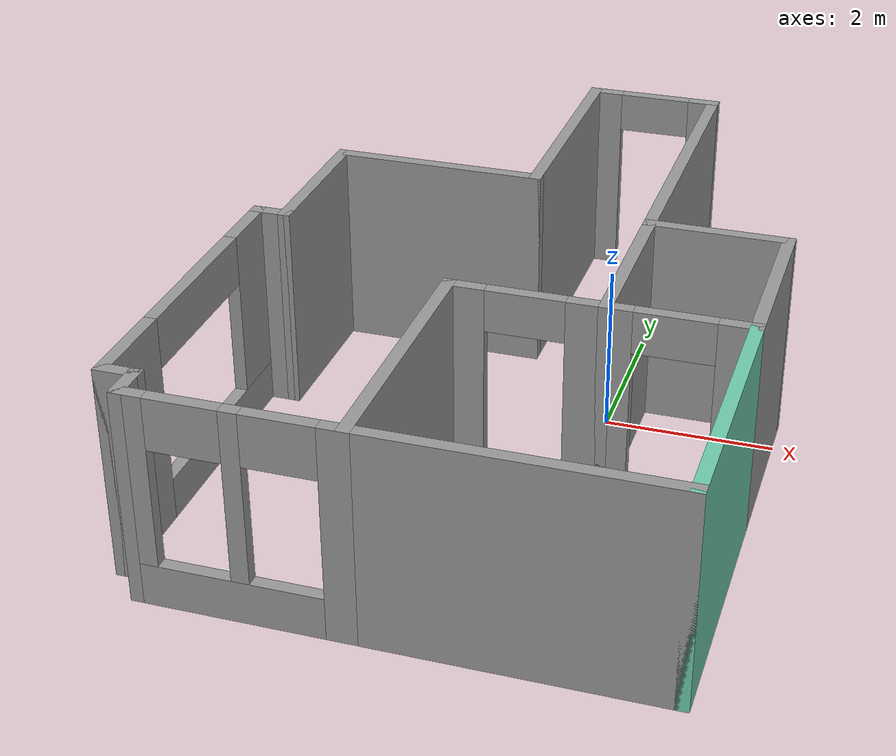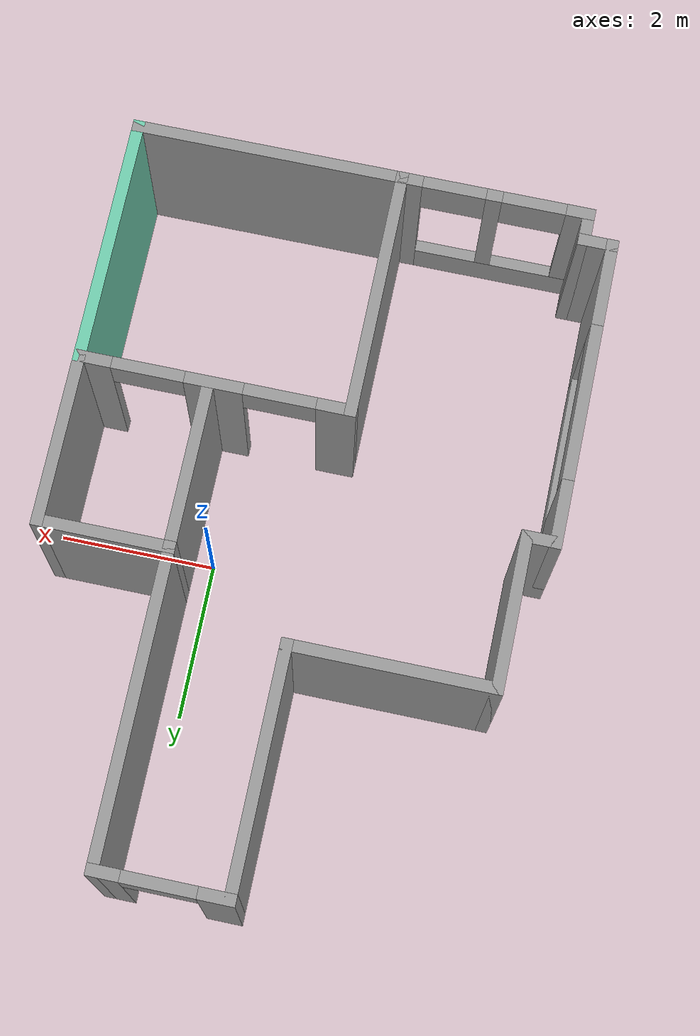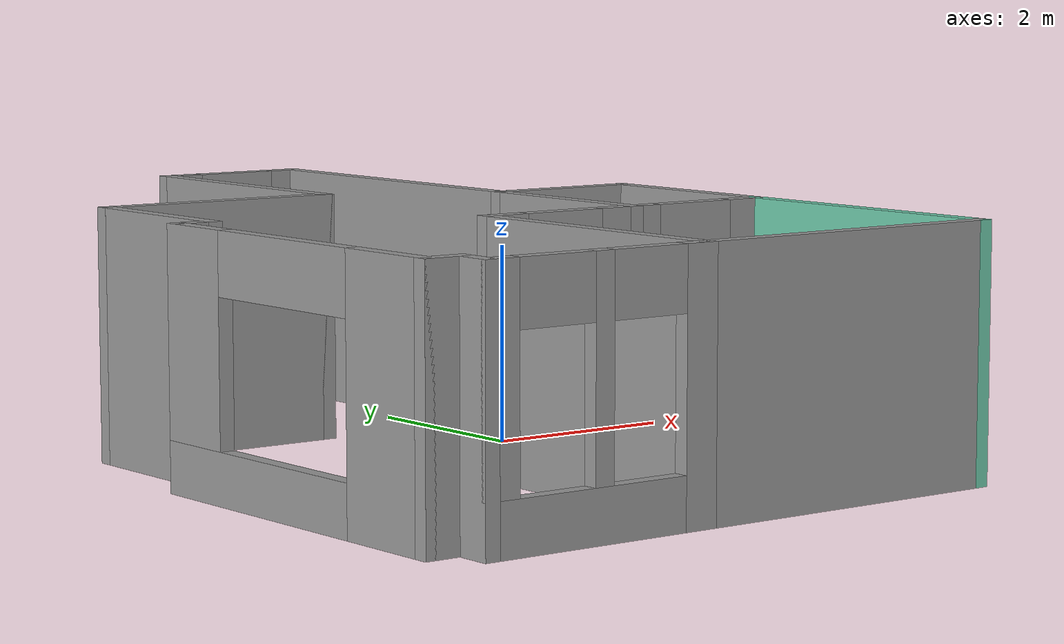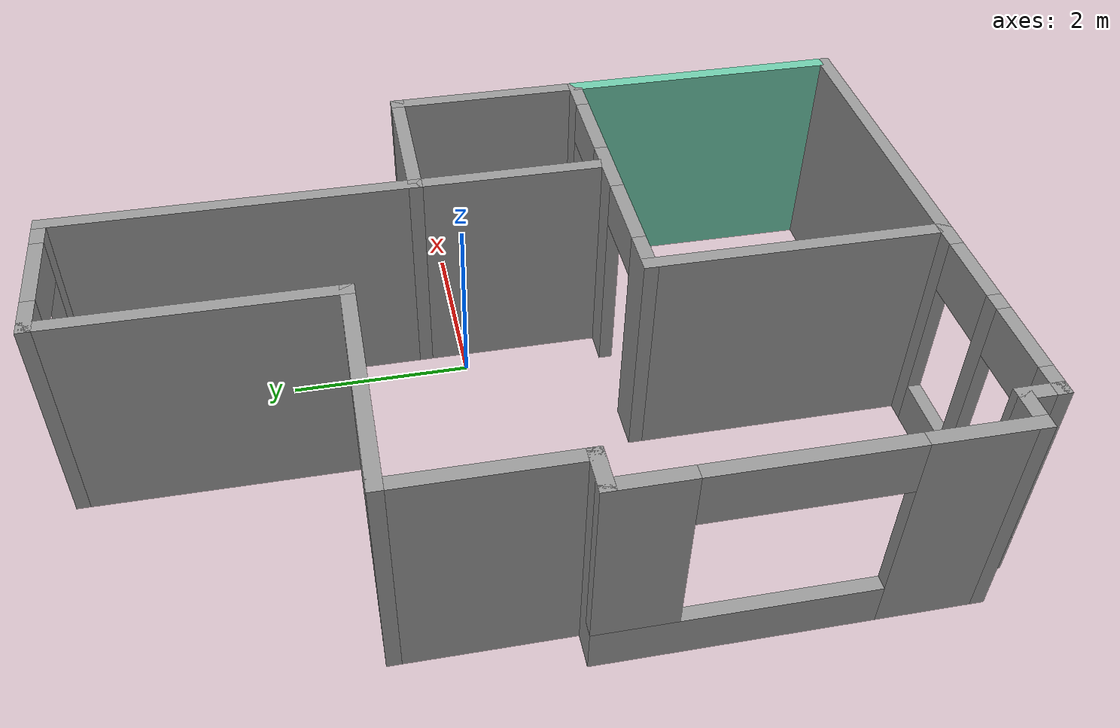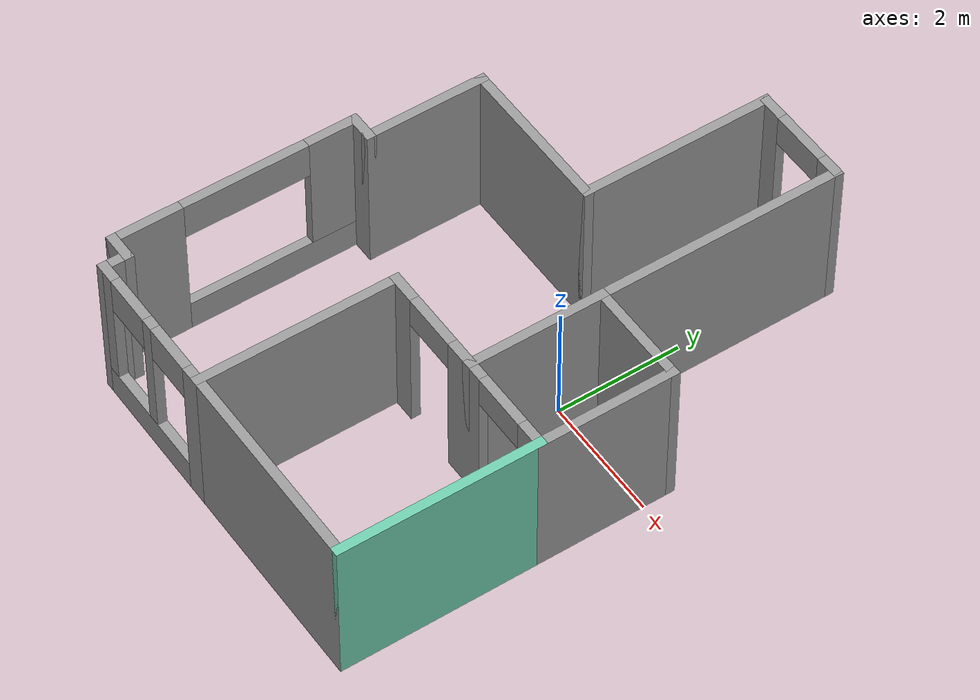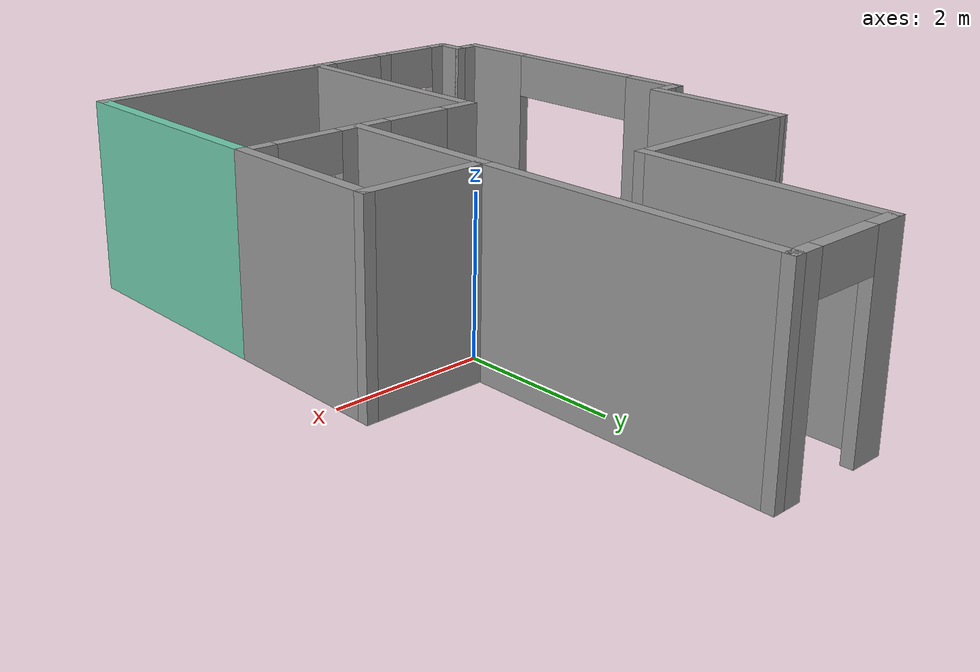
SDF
<?xml version='1.0'?>
<sdf version='1.6'>
  <model name='Myplace'>
    <pose frame=''>-1.105 -0.2305 0 0 -0 0</pose>
    <link name='Wall_0'>
      <collision name='Wall_0_Collision'>
        <geometry>
          <box>
            <size>3.5 0.15 2.5</size>
          </box>
        </geometry>
        <pose frame=''>0 0 1.25 0 -0 0</pose>
      </collision>
      <visual name='Wall_0_Visual'>
        <pose frame=''>0 0 1.25 0 -0 0</pose>
        <geometry>
          <box>
            <size>3.5 0.15 2.5</size>
          </box>
        </geometry>
        <material>
          <script>
            <uri>file://media/materials/scripts/gazebo.material</uri>
            <name>Gazebo/Grey</name>
          </script>
          <ambient>1 1 1 1</ambient>
        </material>
        <meta>
          <layer>0</layer>
        </meta>
      </visual>
      <pose frame=''>1.35 -4.5295 0 0 -0 0</pose>
    </link>
    <link name='Wall_1'>
      <collision name='Wall_1_Collision'>
        <geometry>
          <box>
            <size>3.25 0.15 2.5</size>
          </box>
        </geometry>
        <pose frame=''>0 0 1.25 0 -0 0</pose>
      </collision>
      <visual name='Wall_1_Visual'>
        <pose frame=''>0 0 1.25 0 -0 0</pose>
        <geometry>
          <box>
            <size>3.25 0.15 2.5</size>
          </box>
        </geometry>
        <material>
          <script>
            <uri>file://media/materials/scripts/gazebo.material</uri>
            <name>Gazebo/Grey</name>
          </script>
          <ambient>0.435294 0.796078 0.67451 1</ambient>
        </material>
        <meta>
          <layer>0</layer>
        </meta>
      </visual>
      <pose frame=''>3.025 -2.9795 0 0 -0 1.5708</pose>
    </link>
    <link name='Wall_10'>
      <collision name='Wall_10_Collision'>
        <geometry>
          <box>
            <size>0.5 0.15 2.5</size>
          </box>
        </geometry>
        <pose frame=''>0 0 1.25 0 -0 0</pose>
      </collision>
      <visual name='Wall_10_Visual'>
        <pose frame=''>0 0 1.25 0 -0 0</pose>
        <geometry>
          <box>
            <size>0.5 0.15 2.5</size>
          </box>
        </geometry>
        <material>
          <script>
            <uri>file://media/materials/scripts/gazebo.material</uri>
            <name>Gazebo/Grey</name>
          </script>
          <ambient>1 1 1 1</ambient>
        </material>
        <meta>
          <layer>0</layer>
        </meta>
      </visual>
      <pose frame=''>-2.675 -4.3545 0 0 -0 1.5708</pose>
    </link>
    <link name='Wall_11'>
      <collision name='Wall_11_Collision'>
        <geometry>
          <box>
            <size>0.5 0.15 2.5</size>
          </box>
        </geometry>
        <pose frame=''>0 0 1.25 0 -0 0</pose>
      </collision>
      <visual name='Wall_11_Visual'>
        <pose frame=''>0 0 1.25 0 -0 0</pose>
        <geometry>
          <box>
            <size>0.5 0.15 2.5</size>
          </box>
        </geometry>
        <material>
          <script>
            <uri>file://media/materials/scripts/gazebo.material</uri>
            <name>Gazebo/Grey</name>
          </script>
          <ambient>1 1 1 1</ambient>
        </material>
        <meta>
          <layer>0</layer>
        </meta>
      </visual>
      <pose frame=''>-2.85 -4.1795 0 0 -0 3.14159</pose>
    </link>
    <link name='Wall_12'>
      <pose frame=''>-3.025 -2.2545 0 0 -0 1.5708</pose>
      <visual name='Wall_12_Visual_0'>
        <pose frame=''>-1.43085 0 1.25 0 -0 0</pose>
        <geometry>
          <box>
            <size>1.1383 0.15 2.5</size>
          </box>
        </geometry>
        <material>
          <script>
            <uri>file://media/materials/scripts/gazebo.material</uri>
            <name>Gazebo/Grey</name>
          </script>
          <ambient>1 1 1 1</ambient>
        </material>
        <meta>
          <layer>0</layer>
        </meta>
      </visual>
      <collision name='Wall_12_Collision_0'>
        <geometry>
          <box>
            <size>1.1383 0.15 2.5</size>
          </box>
        </geometry>
        <pose frame=''>-1.43085 0 1.25 0 -0 0</pose>
      </collision>
      <visual name='Wall_12_Visual_1'>
        <pose frame=''>0.569148 0 0.25 0 -0 0</pose>
        <geometry>
          <box>
            <size>2.8617 0.15 0.5</size>
          </box>
        </geometry>
        <material>
          <script>
            <uri>file://media/materials/scripts/gazebo.material</uri>
            <name>Gazebo/Grey</name>
          </script>
          <ambient>1 1 1 1</ambient>
        </material>
        <meta>
          <layer>0</layer>
        </meta>
      </visual>
      <collision name='Wall_12_Collision_1'>
        <geometry>
          <box>
            <size>2.8617 0.15 0.5</size>
          </box>
        </geometry>
        <pose frame=''>0.569148 0 0.25 0 -0 0</pose>
      </collision>
      <visual name='Wall_12_Visual_2'>
        <pose frame=''>1.56915 0 1.5 0 -0 0</pose>
        <geometry>
          <box>
            <size>0.861703 0.15 2</size>
          </box>
        </geometry>
        <material>
          <script>
            <uri>file://media/materials/scripts/gazebo.material</uri>
            <name>Gazebo/Grey</name>
          </script>
          <ambient>1 1 1 1</ambient>
        </material>
        <meta>
          <layer>0</layer>
        </meta>
      </visual>
      <collision name='Wall_12_Collision_2'>
        <geometry>
          <box>
            <size>0.861703 0.15 2</size>
          </box>
        </geometry>
        <pose frame=''>1.56915 0 1.5 0 -0 0</pose>
      </collision>
      <visual name='Wall_12_Visual_3'>
        <pose frame=''>0.138297 0 2.2 0 -0 0</pose>
        <geometry>
          <box>
            <size>2 0.15 0.6</size>
          </box>
        </geometry>
        <material>
          <script>
            <uri>file://media/materials/scripts/gazebo.material</uri>
            <name>Gazebo/Grey</name>
          </script>
          <ambient>1 1 1 1</ambient>
        </material>
        <meta>
          <layer>0</layer>
        </meta>
      </visual>
      <collision name='Wall_12_Collision_3'>
        <geometry>
          <box>
            <size>2 0.15 0.6</size>
          </box>
        </geometry>
        <pose frame=''>0.138297 0 2.2 0 -0 0</pose>
      </collision>
    </link>
    <link name='Wall_13'>
      <collision name='Wall_13_Collision'>
        <geometry>
          <box>
            <size>0.5 0.15 2.5</size>
          </box>
        </geometry>
        <pose frame=''>0 0 1.25 0 -0 0</pose>
      </collision>
      <visual name='Wall_13_Visual'>
        <pose frame=''>0 0 1.25 0 -0 0</pose>
        <geometry>
          <box>
            <size>0.5 0.15 2.5</size>
          </box>
        </geometry>
        <material>
          <script>
            <uri>file://media/materials/scripts/gazebo.material</uri>
            <name>Gazebo/Grey</name>
          </script>
          <ambient>1 1 1 1</ambient>
        </material>
        <meta>
          <layer>0</layer>
        </meta>
      </visual>
      <pose frame=''>-2.85 -0.3295 0 0 -0 0</pose>
    </link>
    <link name='Wall_14'>
      <collision name='Wall_14_Collision'>
        <geometry>
          <box>
            <size>2.009 0.15 2.5</size>
          </box>
        </geometry>
        <pose frame=''>0 0 1.25 0 -0 0</pose>
      </collision>
      <visual name='Wall_14_Visual'>
        <pose frame=''>0 0 1.25 0 -0 0</pose>
        <geometry>
          <box>
            <size>2.009 0.15 2.5</size>
          </box>
        </geometry>
        <material>
          <script>
            <uri>file://media/materials/scripts/gazebo.material</uri>
            <name>Gazebo/Grey</name>
          </script>
          <ambient>1 1 1 1</ambient>
        </material>
        <meta>
          <layer>0</layer>
        </meta>
      </visual>
      <pose frame=''>-2.675 0.6 0 0 -0 1.5708</pose>
    </link>
    <link name='Wall_15'>
      <collision name='Wall_15_Collision'>
        <geometry>
          <box>
            <size>2.65002 0.15 2.5</size>
          </box>
        </geometry>
        <pose frame=''>0 0 1.25 0 -0 0</pose>
      </collision>
      <visual name='Wall_15_Visual'>
        <pose frame=''>0 0 1.25 0 -0 0</pose>
        <geometry>
          <box>
            <size>2.65002 0.15 2.5</size>
          </box>
        </geometry>
        <material>
          <script>
            <uri>file://media/materials/scripts/gazebo.material</uri>
            <name>Gazebo/Grey</name>
          </script>
          <ambient>1 1 1 1</ambient>
        </material>
        <meta>
          <layer>0</layer>
        </meta>
      </visual>
      <pose frame=''>-1.425 1.5295 0 0 -0 0</pose>
    </link>
    <link name='Wall_17'>
      <collision name='Wall_17_Collision'>
        <geometry>
          <box>
            <size>4.009 0.15 2.5</size>
          </box>
        </geometry>
        <pose frame=''>0 0 1.25 0 -0 0</pose>
      </collision>
      <visual name='Wall_17_Visual'>
        <pose frame=''>0 0 1.25 0 -0 0</pose>
        <geometry>
          <box>
            <size>4.009 0.15 2.5</size>
          </box>
        </geometry>
        <material>
          <script>
            <uri>file://media/materials/scripts/gazebo.material</uri>
            <name>Gazebo/Grey</name>
          </script>
          <ambient>1 1 1 1</ambient>
        </material>
        <meta>
          <layer>0</layer>
        </meta>
      </visual>
      <pose frame=''>1.425 2.6 0 0 -0 1.5708</pose>
    </link>
    <link name='Wall_18'>
      <pose frame=''>0.625 4.5295 0 0 -0 3.14159</pose>
      <visual name='Wall_18_Visual_0'>
        <pose frame=''>-0.676283 0 1.25 0 -0 0</pose>
        <geometry>
          <box>
            <size>0.397433 0.15 2.5</size>
          </box>
        </geometry>
        <material>
          <script>
            <uri>file://media/materials/scripts/gazebo.material</uri>
            <name>Gazebo/Grey</name>
          </script>
          <ambient>1 1 1 1</ambient>
        </material>
        <meta>
          <layer>0</layer>
        </meta>
      </visual>
      <collision name='Wall_18_Collision_0'>
        <geometry>
          <box>
            <size>0.397433 0.15 2.5</size>
          </box>
        </geometry>
        <pose frame=''>-0.676283 0 1.25 0 -0 0</pose>
      </collision>
      <visual name='Wall_18_Visual_1'>
        <pose frame=''>0.648717 0 1.25 0 -0 0</pose>
        <geometry>
          <box>
            <size>0.452567 0.15 2.5</size>
          </box>
        </geometry>
        <material>
          <script>
            <uri>file://media/materials/scripts/gazebo.material</uri>
            <name>Gazebo/Grey</name>
          </script>
          <ambient>1 1 1 1</ambient>
        </material>
        <meta>
          <layer>0</layer>
        </meta>
      </visual>
      <collision name='Wall_18_Collision_1'>
        <geometry>
          <box>
            <size>0.452567 0.15 2.5</size>
          </box>
        </geometry>
        <pose frame=''>0.648717 0 1.25 0 -0 0</pose>
      </collision>
      <visual name='Wall_18_Visual_2'>
        <pose frame=''>-0.027567 0 2.25 0 -0 0</pose>
        <geometry>
          <box>
            <size>0.9 0.15 0.5</size>
          </box>
        </geometry>
        <material>
          <script>
            <uri>file://media/materials/scripts/gazebo.material</uri>
            <name>Gazebo/Grey</name>
          </script>
          <ambient>1 1 1 1</ambient>
        </material>
        <meta>
          <layer>0</layer>
        </meta>
      </visual>
      <collision name='Wall_18_Collision_2'>
        <geometry>
          <box>
            <size>0.9 0.15 0.5</size>
          </box>
        </geometry>
        <pose frame=''>-0.027567 0 2.25 0 -0 0</pose>
      </collision>
    </link>
    <link name='Wall_19'>
      <collision name='Wall_19_Collision'>
        <geometry>
          <box>
            <size>3.15 0.15 2.5</size>
          </box>
        </geometry>
        <pose frame=''>0 0 1.25 0 -0 0</pose>
      </collision>
      <visual name='Wall_19_Visual'>
        <pose frame=''>0 0 1.25 0 -0 0</pose>
        <geometry>
          <box>
            <size>3.15 0.15 2.5</size>
          </box>
        </geometry>
        <material>
          <script>
            <uri>file://media/materials/scripts/gazebo.material</uri>
            <name>Gazebo/Grey</name>
          </script>
          <ambient>1 1 1 1</ambient>
        </material>
        <meta>
          <layer>0</layer>
        </meta>
      </visual>
      <pose frame=''>-0.175 3.0295 0 0 0 -1.5708</pose>
    </link>
    <link name='Wall_2'>
      <pose frame=''>1.35 -1.4295 0 0 -0 3.14159</pose>
      <visual name='Wall_2_Visual_0'>
        <pose frame=''>-1.5127 0 1.25 0 -0 0</pose>
        <geometry>
          <box>
            <size>0.474589 0.15 2.5</size>
          </box>
        </geometry>
        <material>
          <script>
            <uri>file://media/materials/scripts/gazebo.material</uri>
            <name>Gazebo/Grey</name>
          </script>
          <ambient>1 1 1 1</ambient>
        </material>
        <meta>
          <layer>0</layer>
        </meta>
      </visual>
      <collision name='Wall_2_Collision_0'>
        <geometry>
          <box>
            <size>0.474589 0.15 2.5</size>
          </box>
        </geometry>
        <pose frame=''>-1.5127 0 1.25 0 -0 0</pose>
      </collision>
      <visual name='Wall_2_Visual_1'>
        <pose frame=''>-0.011425 0 1.25 0 -0 0</pose>
        <geometry>
          <box>
            <size>0.727971 0.15 2.5</size>
          </box>
        </geometry>
        <material>
          <script>
            <uri>file://media/materials/scripts/gazebo.material</uri>
            <name>Gazebo/Grey</name>
          </script>
          <ambient>1 1 1 1</ambient>
        </material>
        <meta>
          <layer>0</layer>
        </meta>
      </visual>
      <collision name='Wall_2_Collision_1'>
        <geometry>
          <box>
            <size>0.727971 0.15 2.5</size>
          </box>
        </geometry>
        <pose frame=''>-0.011425 0 1.25 0 -0 0</pose>
      </collision>
      <visual name='Wall_2_Visual_2'>
        <pose frame=''>1.50128 0 1.25 0 -0 0</pose>
        <geometry>
          <box>
            <size>0.49744 0.15 2.5</size>
          </box>
        </geometry>
        <material>
          <script>
            <uri>file://media/materials/scripts/gazebo.material</uri>
            <name>Gazebo/Grey</name>
          </script>
          <ambient>1 1 1 1</ambient>
        </material>
        <meta>
          <layer>0</layer>
        </meta>
      </visual>
      <collision name='Wall_2_Collision_2'>
        <geometry>
          <box>
            <size>0.49744 0.15 2.5</size>
          </box>
        </geometry>
        <pose frame=''>1.50128 0 1.25 0 -0 0</pose>
      </collision>
      <visual name='Wall_2_Visual_3'>
        <pose frame=''>-0.825411 0 2.25 0 -0 0</pose>
        <geometry>
          <box>
            <size>0.9 0.15 0.5</size>
          </box>
        </geometry>
        <material>
          <script>
            <uri>file://media/materials/scripts/gazebo.material</uri>
            <name>Gazebo/Grey</name>
          </script>
          <ambient>1 1 1 1</ambient>
        </material>
        <meta>
          <layer>0</layer>
        </meta>
      </visual>
      <collision name='Wall_2_Collision_3'>
        <geometry>
          <box>
            <size>0.9 0.15 0.5</size>
          </box>
        </geometry>
        <pose frame=''>-0.825411 0 2.25 0 -0 0</pose>
      </collision>
      <visual name='Wall_2_Visual_4'>
        <pose frame=''>0.80256 0 2.25 0 -0 0</pose>
        <geometry>
          <box>
            <size>0.9 0.15 0.5</size>
          </box>
        </geometry>
        <material>
          <script>
            <uri>file://media/materials/scripts/gazebo.material</uri>
            <name>Gazebo/Grey</name>
          </script>
          <ambient>1 1 1 1</ambient>
        </material>
        <meta>
          <layer>0</layer>
        </meta>
      </visual>
      <collision name='Wall_2_Collision_4'>
        <geometry>
          <box>
            <size>0.9 0.15 0.5</size>
          </box>
        </geometry>
        <pose frame=''>0.80256 0 2.25 0 -0 0</pose>
      </collision>
    </link>
    <link name='Wall_3'>
      <collision name='Wall_3_Collision'>
        <geometry>
          <box>
            <size>3.25 0.15 2.5</size>
          </box>
        </geometry>
        <pose frame=''>0 0 1.25 0 -0 0</pose>
      </collision>
      <visual name='Wall_3_Visual'>
        <pose frame=''>0 0 1.25 0 -0 0</pose>
        <geometry>
          <box>
            <size>3.25 0.15 2.5</size>
          </box>
        </geometry>
        <material>
          <script>
            <uri>file://media/materials/scripts/gazebo.material</uri>
            <name>Gazebo/Grey</name>
          </script>
          <ambient>1 1 1 1</ambient>
        </material>
        <meta>
          <layer>0</layer>
        </meta>
      </visual>
      <pose frame=''>-0.325 -2.9795 0 0 0 -1.5708</pose>
    </link>
    <link name='Wall_5'>
      <collision name='Wall_5_Collision'>
        <geometry>
          <box>
            <size>2.25 0.15 2.5</size>
          </box>
        </geometry>
        <pose frame=''>0 0 1.25 0 -0 0</pose>
      </collision>
      <visual name='Wall_5_Visual'>
        <pose frame=''>0 0 1.25 0 -0 0</pose>
        <geometry>
          <box>
            <size>2.25 0.15 2.5</size>
          </box>
        </geometry>
        <material>
          <script>
            <uri>file://media/materials/scripts/gazebo.material</uri>
            <name>Gazebo/Grey</name>
          </script>
          <ambient>1 1 1 1</ambient>
        </material>
        <meta>
          <layer>0</layer>
        </meta>
      </visual>
      <pose frame=''>3.025 -0.3795 0 0 -0 1.5708</pose>
    </link>
    <link name='Wall_6'>
      <collision name='Wall_6_Collision'>
        <geometry>
          <box>
            <size>1.75 0.15 2.5</size>
          </box>
        </geometry>
        <pose frame=''>0 0 1.25 0 -0 0</pose>
      </collision>
      <visual name='Wall_6_Visual'>
        <pose frame=''>0 0 1.25 0 -0 0</pose>
        <geometry>
          <box>
            <size>1.75 0.15 2.5</size>
          </box>
        </geometry>
        <material>
          <script>
            <uri>file://media/materials/scripts/gazebo.material</uri>
            <name>Gazebo/Grey</name>
          </script>
          <ambient>1 1 1 1</ambient>
        </material>
        <meta>
          <layer>0</layer>
        </meta>
      </visual>
      <pose frame=''>2.225 0.6705 0 0 -0 3.14159</pose>
    </link>
    <link name='Wall_7'>
      <collision name='Wall_7_Collision'>
        <geometry>
          <box>
            <size>2.25 0.15 2.5</size>
          </box>
        </geometry>
        <pose frame=''>0 0 1.25 0 -0 0</pose>
      </collision>
      <visual name='Wall_7_Visual'>
        <pose frame=''>0 0 1.25 0 -0 0</pose>
        <geometry>
          <box>
            <size>2.25 0.15 2.5</size>
          </box>
        </geometry>
        <material>
          <script>
            <uri>file://media/materials/scripts/gazebo.material</uri>
            <name>Gazebo/Grey</name>
          </script>
          <ambient>1 1 1 1</ambient>
        </material>
        <meta>
          <layer>0</layer>
        </meta>
      </visual>
      <pose frame=''>1.425 -0.3795 0 0 0 -1.5708</pose>
    </link>
    <link name='Wall_9'>
      <pose frame=''>-1.5 -4.5295 0 0 -0 3.14159</pose>
      <visual name='Wall_9_Visual_0'>
        <pose frame=''>-1.07948 0 1.25 0 -0 0</pose>
        <geometry>
          <box>
            <size>0.341046 0.15 2.5</size>
          </box>
        </geometry>
        <material>
          <script>
            <uri>file://media/materials/scripts/gazebo.material</uri>
            <name>Gazebo/Grey</name>
          </script>
          <ambient>1 1 1 1</ambient>
        </material>
        <meta>
          <layer>0</layer>
        </meta>
      </visual>
      <collision name='Wall_9_Collision_0'>
        <geometry>
          <box>
            <size>0.341046 0.15 2.5</size>
          </box>
        </geometry>
        <pose frame=''>-1.07948 0 1.25 0 -0 0</pose>
      </collision>
      <visual name='Wall_9_Visual_1'>
        <pose frame=''>0.170523 0 0.25 0 -0 0</pose>
        <geometry>
          <box>
            <size>2.15895 0.15 0.5</size>
          </box>
        </geometry>
        <material>
          <script>
            <uri>file://media/materials/scripts/gazebo.material</uri>
            <name>Gazebo/Grey</name>
          </script>
          <ambient>1 1 1 1</ambient>
        </material>
        <meta>
          <layer>0</layer>
        </meta>
      </visual>
      <collision name='Wall_9_Collision_1'>
        <geometry>
          <box>
            <size>2.15895 0.15 0.5</size>
          </box>
        </geometry>
        <pose frame=''>0.170523 0 0.25 0 -0 0</pose>
      </collision>
      <visual name='Wall_9_Visual_2'>
        <pose frame=''>-0.007907 0 1.5 0 -0 0</pose>
        <geometry>
          <box>
            <size>0.202094 0.15 2</size>
          </box>
        </geometry>
        <material>
          <script>
            <uri>file://media/materials/scripts/gazebo.material</uri>
            <name>Gazebo/Grey</name>
          </script>
          <ambient>1 1 1 1</ambient>
        </material>
        <meta>
          <layer>0</layer>
        </meta>
      </visual>
      <collision name='Wall_9_Collision_2'>
        <geometry>
          <box>
            <size>0.202094 0.15 2</size>
          </box>
        </geometry>
        <pose frame=''>-0.007907 0 1.5 0 -0 0</pose>
      </collision>
      <visual name='Wall_9_Visual_3'>
        <pose frame=''>1.07157 0 1.5 0 -0 0</pose>
        <geometry>
          <box>
            <size>0.35686 0.15 2</size>
          </box>
        </geometry>
        <material>
          <script>
            <uri>file://media/materials/scripts/gazebo.material</uri>
            <name>Gazebo/Grey</name>
          </script>
          <ambient>1 1 1 1</ambient>
        </material>
        <meta>
          <layer>0</layer>
        </meta>
      </visual>
      <collision name='Wall_9_Collision_3'>
        <geometry>
          <box>
            <size>0.35686 0.15 2</size>
          </box>
        </geometry>
        <pose frame=''>1.07157 0 1.5 0 -0 0</pose>
      </collision>
      <visual name='Wall_9_Visual_4'>
        <pose frame=''>-0.508954 0 2.2 0 -0 0</pose>
        <geometry>
          <box>
            <size>0.8 0.15 0.6</size>
          </box>
        </geometry>
        <material>
          <script>
            <uri>file://media/materials/scripts/gazebo.material</uri>
            <name>Gazebo/Grey</name>
          </script>
          <ambient>1 1 1 1</ambient>
        </material>
        <meta>
          <layer>0</layer>
        </meta>
      </visual>
      <collision name='Wall_9_Collision_4'>
        <geometry>
          <box>
            <size>0.8 0.15 0.6</size>
          </box>
        </geometry>
        <pose frame=''>-0.508954 0 2.2 0 -0 0</pose>
      </collision>
      <visual name='Wall_9_Visual_5'>
        <pose frame=''>0.49314 0 2.2 0 -0 0</pose>
        <geometry>
          <box>
            <size>0.8 0.15 0.6</size>
          </box>
        </geometry>
        <material>
          <script>
            <uri>file://media/materials/scripts/gazebo.material</uri>
            <name>Gazebo/Grey</name>
          </script>
          <ambient>1 1 1 1</ambient>
        </material>
        <meta>
          <layer>0</layer>
        </meta>
      </visual>
      <collision name='Wall_9_Collision_5'>
        <geometry>
          <box>
            <size>0.8 0.15 0.6</size>
          </box>
        </geometry>
        <pose frame=''>0.49314 0 2.2 0 -0 0</pose>
      </collision>
    </link>
    <static>1</static>
  </model>
</sdf>
